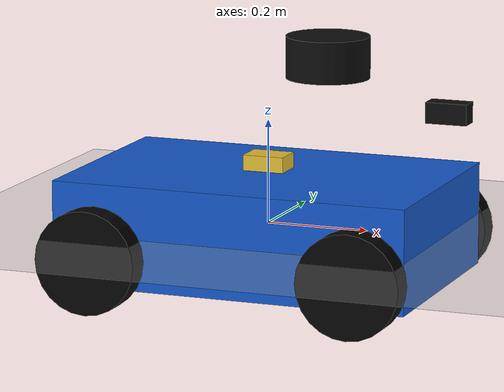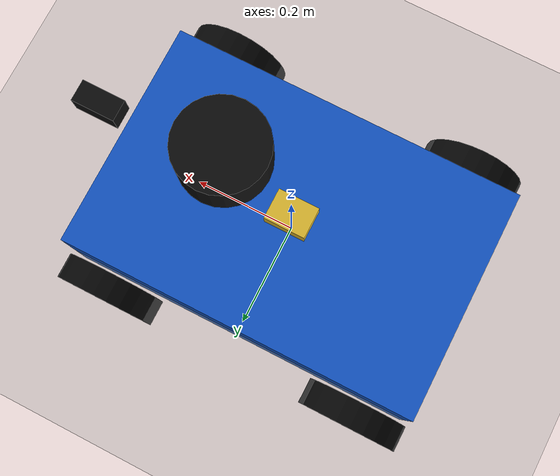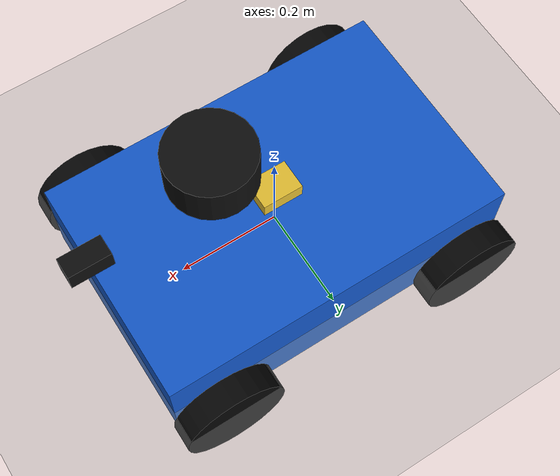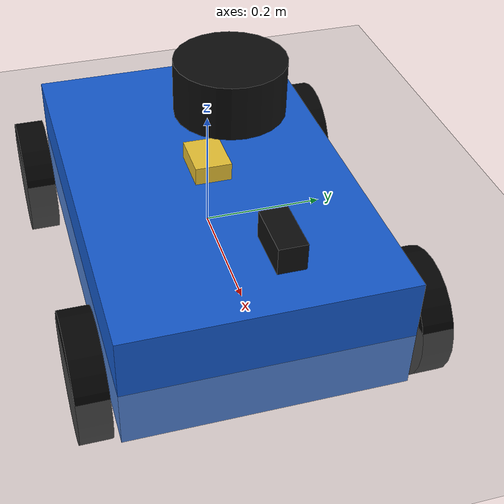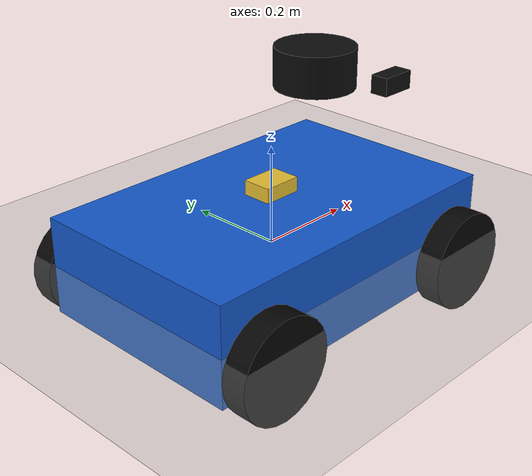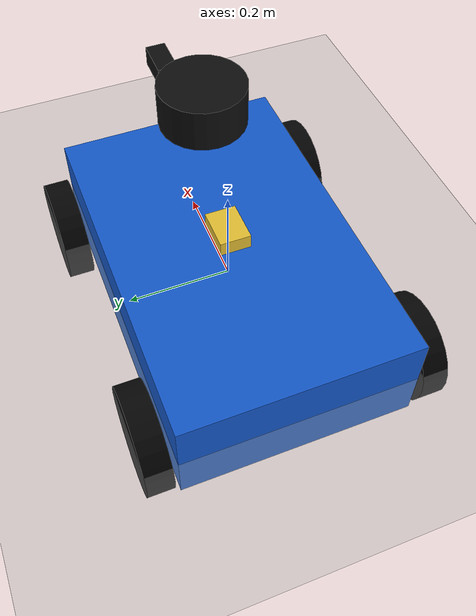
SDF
<?xml version="1.0"?>
<sdf version="1.9">
  <world name="dlio_empty">
    <plugin filename="gz-sim-physics-system" name="gz::sim::systems::Physics"/>
    <plugin filename="gz-sim-user-commands-system" name="gz::sim::systems::UserCommands"/>
    <plugin filename="gz-sim-scene-broadcaster-system" name="gz::sim::systems::SceneBroadcaster"/>
    <plugin filename="gz-sim-sensors-system" name="gz::sim::systems::Sensors">
      <render_engine>ogre2</render_engine>
    </plugin>
    <plugin filename="gz-sim-imu-system" name="gz::sim::systems::Imu"/>

    <light name="sun" type="directional">
      <pose>0 0 8 0 0 0</pose>
      <diffuse>0.8 0.8 0.8 1</diffuse>
      <specular>0.2 0.2 0.2 1</specular>
      <direction>-0.5 0.2 -1</direction>
    </light>

    <model name="ground">
      <static>true</static>
      <link name="link">
        <collision name="collision">
          <geometry>
            <plane>
              <normal>0 0 1</normal>
              <size>24 16</size>
            </plane>
          </geometry>
        </collision>
        <visual name="visual">
          <geometry>
            <plane>
              <normal>0 0 1</normal>
              <size>24 16</size>
            </plane>
          </geometry>
          <material>
            <diffuse>0.65 0.65 0.65 1</diffuse>
          </material>
        </visual>
      </link>
    </model>

    <include>
      <uri>model://dlio_car</uri>
      <pose>0 0 0 0 0 0</pose>
    </include>
  </world>
</sdf>

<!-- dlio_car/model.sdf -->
<sdf version="1.9">
  <model name="dlio_car" xmlns:ignition="http://ignitionrobotics.org/schema">
    <pose>0 0 0.14 0 0 0</pose>
    <self_collide>false</self_collide>

    <link name="base_link">
      <inertial>
        <mass>12.0</mass>
        <inertia>
          <ixx>0.20</ixx>
          <iyy>0.35</iyy>
          <izz>0.42</izz>
          <ixy>0</ixy>
          <ixz>0</ixz>
          <iyz>0</iyz>
        </inertia>
      </inertial>
      <collision name="base_collision">
        <geometry>
          <box>
            <size>0.70 0.45 0.20</size>
          </box>
        </geometry>
      </collision>
      <visual name="base_visual">
        <geometry>
          <box>
            <size>0.70 0.45 0.20</size>
          </box>
        </geometry>
        <material>
          <diffuse>0.08 0.35 0.80 1</diffuse>
        </material>
      </visual>
    </link>

    <link name="lidar">
      <pose relative_to="base_link">0.12 0 0.33 0 0 0</pose>
      <inertial>
        <mass>0.2</mass>
        <inertia>
          <ixx>0.0004</ixx>
          <iyy>0.0004</iyy>
          <izz>0.0004</izz>
          <ixy>0</ixy>
          <ixz>0</ixz>
          <iyz>0</iyz>
        </inertia>
      </inertial>
      <visual name="lidar_visual">
        <geometry>
          <cylinder>
            <radius>0.08</radius>
            <length>0.08</length>
          </cylinder>
        </geometry>
        <material>
          <diffuse>0.05 0.05 0.05 1</diffuse>
        </material>
      </visual>
      <sensor name="lidar_sensor" type="gpu_lidar">
        <topic>/points_raw</topic>
        <update_rate>10</update_rate>
        <alwaysOn>true</alwaysOn>
        <visualize>true</visualize>
        <lidar>
          <scan>
            <horizontal>
              <samples>720</samples>
              <resolution>1</resolution>
              <min_angle>-3.14159265</min_angle>
              <max_angle>3.14159265</max_angle>
            </horizontal>
            <vertical>
              <samples>32</samples>
              <resolution>1</resolution>
              <min_angle>-0.45</min_angle>
              <max_angle>0.35</max_angle>
            </vertical>
          </scan>
          <range>
            <min>0.2</min>
            <max>18.0</max>
            <resolution>0.03</resolution>
          </range>
          <noise>
            <type>gaussian</type>
            <mean>0.0</mean>
            <stddev>0.01</stddev>
          </noise>
        </lidar>
      </sensor>
    </link>

    <link name="imu">
      <pose relative_to="base_link">0 0 0.12 0 0 0</pose>
      <inertial>
        <mass>0.05</mass>
        <inertia>
          <ixx>0.00002</ixx>
          <iyy>0.00002</iyy>
          <izz>0.00002</izz>
          <ixy>0</ixy>
          <ixz>0</ixz>
          <iyz>0</iyz>
        </inertia>
      </inertial>
      <visual name="imu_visual">
        <geometry>
          <box>
            <size>0.08 0.06 0.03</size>
          </box>
        </geometry>
        <material>
          <diffuse>0.9 0.75 0.2 1</diffuse>
        </material>
      </visual>
      <sensor name="imu_sensor" type="imu">
        <topic>/imu_raw</topic>
        <update_rate>100</update_rate>
        <always_on>true</always_on>
      </sensor>
    </link>

    <link name="wildos_front_camera">
      <pose relative_to="base_link">0.36 0 0.24 0 0 0</pose>
      <inertial>
        <mass>0.08</mass>
        <inertia>
          <ixx>0.00005</ixx>
          <iyy>0.00005</iyy>
          <izz>0.00005</izz>
          <ixy>0</ixy>
          <ixz>0</ixz>
          <iyz>0</iyz>
        </inertia>
      </inertial>
      <visual name="front_camera_visual">
        <geometry>
          <box>
            <size>0.08 0.04 0.04</size>
          </box>
        </geometry>
        <material>
          <diffuse>0.05 0.05 0.05 1</diffuse>
        </material>
      </visual>
      <sensor name="front_camera_sensor" type="camera">
        <pose>0 0 0 0 0 0</pose>
        <topic>/wildos/front/color/image_raw</topic>
        <update_rate>10</update_rate>
        <always_on>true</always_on>
        <visualize>true</visualize>
        <camera>
          <optical_frame_id>wildos_front_camera_color_optical_frame</optical_frame_id>
          <horizontal_fov>1.3962634</horizontal_fov>
          <image>
            <width>640</width>
            <height>480</height>
            <format>R8G8B8</format>
          </image>
          <clip>
            <near>0.05</near>
            <far>40.0</far>
          </clip>
        </camera>
      </sensor>
    </link>

    <link name="front_left_wheel">
      <pose relative_to="base_link">0.26 0.26 -0.04 -1.57079632679 0 0</pose>
      <inertial>
        <mass>0.45</mass>
        <inertia>
          <ixx>0.002</ixx>
          <iyy>0.002</iyy>
          <izz>0.002</izz>
          <ixy>0</ixy>
          <ixz>0</ixz>
          <iyz>0</iyz>
        </inertia>
      </inertial>
      <collision name="front_left_wheel_collision">
        <geometry>
          <cylinder>
            <radius>0.10</radius>
            <length>0.05</length>
          </cylinder>
        </geometry>
        <surface>
          <friction>
            <ode>
              <mu>1.0</mu>
              <mu2>0.0</mu2>
              <fdir1 ignition:expressed_in="base_link">1 -1 0</fdir1>
            </ode>
          </friction>
        </surface>
      </collision>
      <visual name="front_left_wheel_visual">
        <geometry>
          <cylinder>
            <radius>0.10</radius>
            <length>0.05</length>
          </cylinder>
        </geometry>
        <material>
          <diffuse>0.02 0.02 0.02 1</diffuse>
        </material>
      </visual>
    </link>

    <link name="front_right_wheel">
      <pose relative_to="base_link">0.26 -0.26 -0.04 -1.57079632679 0 0</pose>
      <inertial>
        <mass>0.45</mass>
        <inertia>
          <ixx>0.002</ixx>
          <iyy>0.002</iyy>
          <izz>0.002</izz>
          <ixy>0</ixy>
          <ixz>0</ixz>
          <iyz>0</iyz>
        </inertia>
      </inertial>
      <collision name="front_right_wheel_collision">
        <geometry>
          <cylinder>
            <radius>0.10</radius>
            <length>0.05</length>
          </cylinder>
        </geometry>
        <surface>
          <friction>
            <ode>
              <mu>1.0</mu>
              <mu2>0.0</mu2>
              <fdir1 ignition:expressed_in="base_link">1 1 0</fdir1>
            </ode>
          </friction>
        </surface>
      </collision>
      <visual name="front_right_wheel_visual">
        <geometry>
          <cylinder>
            <radius>0.10</radius>
            <length>0.05</length>
          </cylinder>
        </geometry>
        <material>
          <diffuse>0.02 0.02 0.02 1</diffuse>
        </material>
      </visual>
    </link>

    <link name="rear_left_wheel">
      <pose relative_to="base_link">-0.26 0.26 -0.04 -1.57079632679 0 0</pose>
      <inertial>
        <mass>0.45</mass>
        <inertia>
          <ixx>0.002</ixx>
          <iyy>0.002</iyy>
          <izz>0.002</izz>
          <ixy>0</ixy>
          <ixz>0</ixz>
          <iyz>0</iyz>
        </inertia>
      </inertial>
      <collision name="rear_left_wheel_collision">
        <geometry>
          <cylinder>
            <radius>0.10</radius>
            <length>0.05</length>
          </cylinder>
        </geometry>
        <surface>
          <friction>
            <ode>
              <mu>1.0</mu>
              <mu2>0.0</mu2>
              <fdir1 ignition:expressed_in="base_link">1 1 0</fdir1>
            </ode>
          </friction>
        </surface>
      </collision>
      <visual name="rear_left_wheel_visual">
        <geometry>
          <cylinder>
            <radius>0.10</radius>
            <length>0.05</length>
          </cylinder>
        </geometry>
        <material>
          <diffuse>0.02 0.02 0.02 1</diffuse>
        </material>
      </visual>
    </link>

    <link name="rear_right_wheel">
      <pose relative_to="base_link">-0.26 -0.26 -0.04 -1.57079632679 0 0</pose>
      <inertial>
        <mass>0.45</mass>
        <inertia>
          <ixx>0.002</ixx>
          <iyy>0.002</iyy>
          <izz>0.002</izz>
          <ixy>0</ixy>
          <ixz>0</ixz>
          <iyz>0</iyz>
        </inertia>
      </inertial>
      <collision name="rear_right_wheel_collision">
        <geometry>
          <cylinder>
            <radius>0.10</radius>
            <length>0.05</length>
          </cylinder>
        </geometry>
        <surface>
          <friction>
            <ode>
              <mu>1.0</mu>
              <mu2>0.0</mu2>
              <fdir1 ignition:expressed_in="base_link">1 -1 0</fdir1>
            </ode>
          </friction>
        </surface>
      </collision>
      <visual name="rear_right_wheel_visual">
        <geometry>
          <cylinder>
            <radius>0.10</radius>
            <length>0.05</length>
          </cylinder>
        </geometry>
        <material>
          <diffuse>0.02 0.02 0.02 1</diffuse>
        </material>
      </visual>
    </link>

    <joint name="lidar_joint" type="fixed">
      <parent>base_link</parent>
      <child>lidar</child>
    </joint>
    <joint name="imu_joint" type="fixed">
      <parent>base_link</parent>
      <child>imu</child>
    </joint>
    <joint name="wildos_front_camera_joint" type="fixed">
      <parent>base_link</parent>
      <child>wildos_front_camera</child>
    </joint>
    <joint name="front_left_wheel_joint" type="revolute">
      <parent>base_link</parent>
      <child>front_left_wheel</child>
      <axis>
        <xyz>0 0 1</xyz>
        <limit>
          <lower>-1.79769e+308</lower>
          <upper>1.79769e+308</upper>
        </limit>
      </axis>
    </joint>
    <joint name="front_right_wheel_joint" type="revolute">
      <parent>base_link</parent>
      <child>front_right_wheel</child>
      <axis>
        <xyz>0 0 1</xyz>
        <limit>
          <lower>-1.79769e+308</lower>
          <upper>1.79769e+308</upper>
        </limit>
      </axis>
    </joint>
    <joint name="rear_left_wheel_joint" type="revolute">
      <parent>base_link</parent>
      <child>rear_left_wheel</child>
      <axis>
        <xyz>0 0 1</xyz>
        <limit>
          <lower>-1.79769e+308</lower>
          <upper>1.79769e+308</upper>
        </limit>
      </axis>
    </joint>
    <joint name="rear_right_wheel_joint" type="revolute">
      <parent>base_link</parent>
      <child>rear_right_wheel</child>
      <axis>
        <xyz>0 0 1</xyz>
        <limit>
          <lower>-1.79769e+308</lower>
          <upper>1.79769e+308</upper>
        </limit>
      </axis>
    </joint>

    <plugin filename="ignition-gazebo-mecanum-drive-system" name="ignition::gazebo::systems::MecanumDrive">
      <front_left_joint>front_left_wheel_joint</front_left_joint>
      <front_right_joint>front_right_wheel_joint</front_right_joint>
      <back_left_joint>rear_left_wheel_joint</back_left_joint>
      <back_right_joint>rear_right_wheel_joint</back_right_joint>
      <wheel_separation>0.52</wheel_separation>
      <wheelbase>0.52</wheelbase>
      <wheel_radius>0.10</wheel_radius>
      <topic>/cmd_vel</topic>
      <min_acceleration>-5</min_acceleration>
      <max_acceleration>5</max_acceleration>
      <odom_topic>/gazebo/odom</odom_topic>
      <tf_topic>/tf</tf_topic>
      <child_frame_id>base_link</child_frame_id>
    </plugin>

    <plugin filename="gz-sim-pose-publisher-system" name="gz::sim::systems::PosePublisher">
      <publish_model_pose>true</publish_model_pose>
      <publish_link_pose>false</publish_link_pose>
      <publish_collision_pose>false</publish_collision_pose>
      <publish_visual_pose>false</publish_visual_pose>
      <publish_nested_model_pose>false</publish_nested_model_pose>
      <use_pose_vector_msg>false</use_pose_vector_msg>
      <update_frequency>50</update_frequency>
    </plugin>
  </model>
</sdf>
